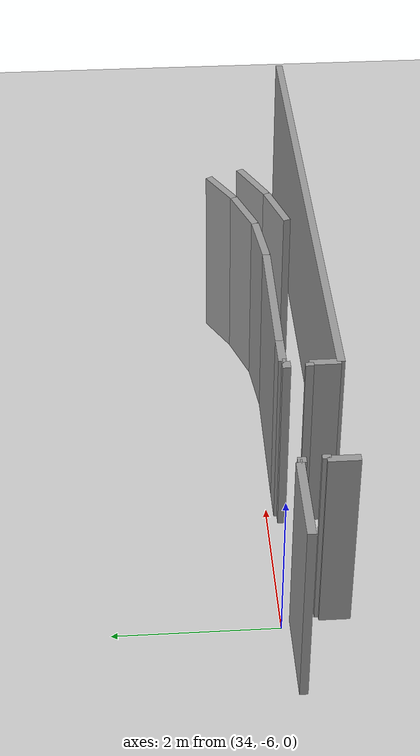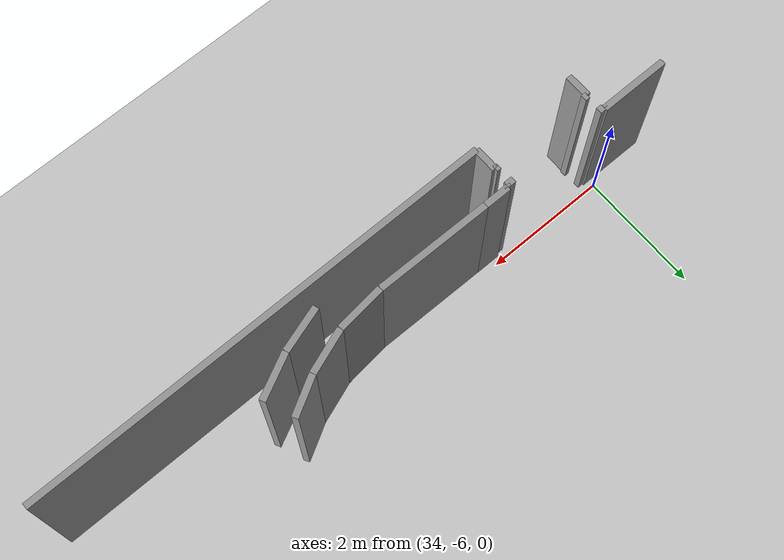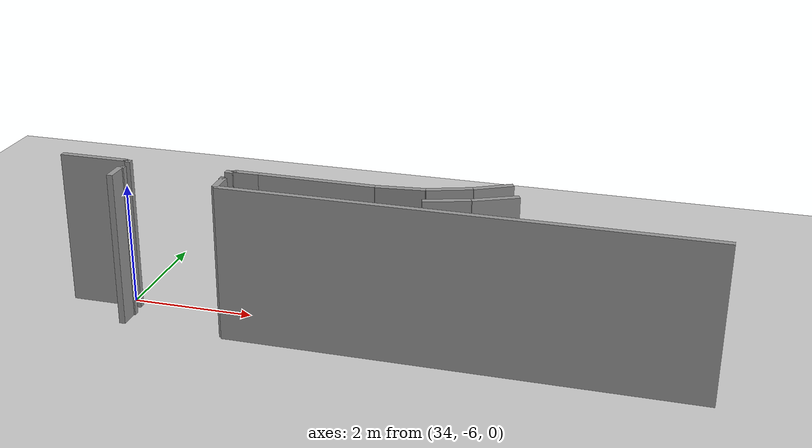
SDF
<sdf version="1.6">
 <world name="default">
  <model name="ground_plane">
   <static>1</static>
   <link name="link">
    <collision name="collision">
     <geometry><plane><normal>0 0 1</normal><size>100 100</size></plane></geometry>
     <surface><friction><ode><mu>100</mu><mu2>50</mu2></ode></friction></surface>
    </collision>
    <visual name="visual">
     <cast_shadows>0</cast_shadows>
     <geometry><plane><normal>0 0 1</normal><size>100 100</size></plane></geometry>
     <material>
      <script><uri>file://media/materials/scripts/gazebo.material</uri><name>Gazebo/Grey</name></script>
     </material>
    </visual>
   </link>
  </model>
  <model name="0510032258_A_40_1_105">
   <static>1</static>
   <link name="Wall_215">
    <collision name="Wall_215_Collision">
     <geometry><box><size>0.622096892251 0.1 2.5</size></box></geometry>
     <pose>0.311048446125 0 1.25 0 0 0</pose>
    </collision>
    <visual name="Wall_215_Visual">
     <pose>0.311048446125 0 1.25 0 0 0</pose>
     <geometry><box><size>0.622096892251 0.1 2.5</size></box></geometry>
     <material>
      <script><uri>file://media/materials/scripts/gazebo.material</uri><name>Gazebo/Grey</name></script>
      <ambient>1 1 1 1</ambient>
     </material>
    </visual>
    <pose>87.9606667344 -18.6836822848 0 0 0 -2.63262958993</pose>
   </link>
   <link name="Wall_216">
    <collision name="Wall_216_Collision">
     <geometry><box><size>0.697302840165 0.1 2.5</size></box></geometry>
     <pose>0.348651420082 0 1.25 0 0 0</pose>
    </collision>
    <visual name="Wall_216_Visual">
     <pose>0.348651420082 0 1.25 0 0 0</pose>
     <geometry><box><size>0.697302840165 0.1 2.5</size></box></geometry>
     <material>
      <script><uri>file://media/materials/scripts/gazebo.material</uri><name>Gazebo/Grey</name></script>
      <ambient>1 1 1 1</ambient>
     </material>
    </visual>
    <pose>87.4174204696 -18.9868126842 0 0 0 -2.79973301394</pose>
   </link>
   <link name="Wall_217">
    <collision name="Wall_217_Collision">
     <geometry><box><size>0.74975398253 0.1 2.5</size></box></geometry>
     <pose>0.374876991265 0 1.25 0 0 0</pose>
    </collision>
    <visual name="Wall_217_Visual">
     <pose>0.374876991265 0 1.25 0 0 0</pose>
     <geometry><box><size>0.74975398253 0.1 2.5</size></box></geometry>
     <material>
      <script><uri>file://media/materials/scripts/gazebo.material</uri><name>Gazebo/Grey</name></script>
      <ambient>1 1 1 1</ambient>
     </material>
    </visual>
    <pose>86.7604685436 -19.2205762781 0 0 0 -3.031908486</pose>
   </link>
   <link name="Wall_218">
    <collision name="Wall_218_Collision">
     <geometry><box><size>1.82555913236 0.1 2.5</size></box></geometry>
     <pose>0.912779566181 0 1.25 0 0 0</pose>
    </collision>
    <visual name="Wall_218_Visual">
     <pose>0.912779566181 0 1.25 0 0 0</pose>
     <geometry><box><size>1.82555913236 0.1 2.5</size></box></geometry>
     <material>
      <script><uri>file://media/materials/scripts/gazebo.material</uri><name>Gazebo/Grey</name></script>
      <ambient>1 1 1 1</ambient>
     </material>
    </visual>
    <pose>86.0152200427 -19.3026476268 0 0 0 3.13470293033</pose>
   </link>
   <link name="Wall_219">
    <collision name="Wall_219_Collision">
     <geometry><box><size>0.401209472507 0.1 2.5</size></box></geometry>
     <pose>0.200604736254 0 1.25 0 0 0</pose>
    </collision>
    <visual name="Wall_219_Visual">
     <pose>0.200604736254 0 1.25 0 0 0</pose>
     <geometry><box><size>0.401209472507 0.1 2.5</size></box></geometry>
     <material>
      <script><uri>file://media/materials/scripts/gazebo.material</uri><name>Gazebo/Grey</name></script>
      <ambient>1 1 1 1</ambient>
     </material>
    </visual>
    <pose>84.1897042382 -19.2900701291 0 0 0 3.14159265359</pose>
   </link>
   <link name="Wall_220">
    <collision name="Wall_220_Collision">
     <geometry><box><size>0.0382406748653 0.1 2.5</size></box></geometry>
     <pose>0.0191203374327 0 1.25 0 0 0</pose>
    </collision>
    <visual name="Wall_220_Visual">
     <pose>0.0191203374327 0 1.25 0 0 0</pose>
     <geometry><box><size>0.0382406748653 0.1 2.5</size></box></geometry>
     <material>
      <script><uri>file://media/materials/scripts/gazebo.material</uri><name>Gazebo/Grey</name></script>
      <ambient>1 1 1 1</ambient>
     </material>
    </visual>
    <pose>83.7884947657 -19.2900701291 0 0 0 -1.57079632679</pose>
   </link>
   <link name="Wall_221">
    <collision name="Wall_221_Collision">
     <geometry><box><size>0.128442931192 0.1 2.5</size></box></geometry>
     <pose>0.0642214655961 0 1.25 0 0 0</pose>
    </collision>
    <visual name="Wall_221_Visual">
     <pose>0.0642214655961 0 1.25 0 0 0</pose>
     <geometry><box><size>0.128442931192 0.1 2.5</size></box></geometry>
     <material>
      <script><uri>file://media/materials/scripts/gazebo.material</uri><name>Gazebo/Grey</name></script>
      <ambient>1 1 1 1</ambient>
     </material>
    </visual>
    <pose>83.7884947657 -19.3283108039 0 0 0 3.14159265359</pose>
   </link>
   <link name="Wall_222">
    <collision name="Wall_222_Collision">
     <geometry><box><size>0.0866449842464 0.1 2.5</size></box></geometry>
     <pose>0.0433224921232 0 1.25 0 0 0</pose>
    </collision>
    <visual name="Wall_222_Visual">
     <pose>0.0433224921232 0 1.25 0 0 0</pose>
     <geometry><box><size>0.0866449842464 0.1 2.5</size></box></geometry>
     <material>
      <script><uri>file://media/materials/scripts/gazebo.material</uri><name>Gazebo/Grey</name></script>
      <ambient>1 1 1 1</ambient>
     </material>
    </visual>
    <pose>82.0938357557 -19.3283108039 0 0 0 3.14159265359</pose>
   </link>
   <link name="Wall_223">
    <collision name="Wall_223_Collision">
     <geometry><box><size>0.0233763593861 0.1 2.5</size></box></geometry>
     <pose>0.0116881796931 0 1.25 0 0 0</pose>
    </collision>
    <visual name="Wall_223_Visual">
     <pose>0.0116881796931 0 1.25 0 0 0</pose>
     <geometry><box><size>0.0233763593861 0.1 2.5</size></box></geometry>
     <material>
      <script><uri>file://media/materials/scripts/gazebo.material</uri><name>Gazebo/Grey</name></script>
      <ambient>1 1 1 1</ambient>
     </material>
    </visual>
    <pose>82.0071907714 -19.3283108039 0 0 0 1.57079632679</pose>
   </link>
   <link name="Wall_224">
    <collision name="Wall_224_Collision">
     <geometry><box><size>1.10643866247 0.1 2.5</size></box></geometry>
     <pose>0.553219331233 0 1.25 0 0 0</pose>
    </collision>
    <visual name="Wall_224_Visual">
     <pose>0.553219331233 0 1.25 0 0 0</pose>
     <geometry><box><size>1.10643866247 0.1 2.5</size></box></geometry>
     <material>
      <script><uri>file://media/materials/scripts/gazebo.material</uri><name>Gazebo/Grey</name></script>
      <ambient>1 1 1 1</ambient>
     </material>
    </visual>
    <pose>82.0071907714 -19.3049344446 0 0 0 3.14159265359</pose>
   </link>
   <link name="Wall_246">
    <collision name="Wall_246_Collision">
     <geometry><box><size>0.376689704238 0.1 2.5</size></box></geometry>
     <pose>0.188344852119 0 1.25 0 0 0</pose>
    </collision>
    <visual name="Wall_246_Visual">
     <pose>0.188344852119 0 1.25 0 0 0</pose>
     <geometry><box><size>0.376689704238 0.1 2.5</size></box></geometry>
     <material>
      <script><uri>file://media/materials/scripts/gazebo.material</uri><name>Gazebo/Grey</name></script>
      <ambient>1 1 1 1</ambient>
     </material>
    </visual>
    <pose>82.0470830369 -19.9790375038 0 0 0 1.57079632679</pose>
   </link>
   <link name="Wall_247">
    <collision name="Wall_247_Collision">
     <geometry><box><size>0.0721618050615 0.1 2.5</size></box></geometry>
     <pose>0.0360809025307 0 1.25 0 0 0</pose>
    </collision>
    <visual name="Wall_247_Visual">
     <pose>0.0360809025307 0 1.25 0 0 0</pose>
     <geometry><box><size>0.0721618050615 0.1 2.5</size></box></geometry>
     <material>
      <script><uri>file://media/materials/scripts/gazebo.material</uri><name>Gazebo/Grey</name></script>
      <ambient>1 1 1 1</ambient>
     </material>
    </visual>
    <pose>82.0470830369 -19.6023477996 0 0 0 0.0</pose>
   </link>
   <link name="Wall_248">
    <collision name="Wall_248_Collision">
     <geometry><box><size>0.0655554426263 0.1 2.5</size></box></geometry>
     <pose>0.0327777213131 0 1.25 0 0 0</pose>
    </collision>
    <visual name="Wall_248_Visual">
     <pose>0.0327777213131 0 1.25 0 0 0</pose>
     <geometry><box><size>0.0655554426263 0.1 2.5</size></box></geometry>
     <material>
      <script><uri>file://media/materials/scripts/gazebo.material</uri><name>Gazebo/Grey</name></script>
      <ambient>1 1 1 1</ambient>
     </material>
    </visual>
    <pose>83.6798709218 -19.6023477996 0 0 0 0.0</pose>
   </link>
   <link name="Wall_249">
    <collision name="Wall_249_Collision">
     <geometry><box><size>0.375292204492 0.1 2.5</size></box></geometry>
     <pose>0.187646102246 0 1.25 0 0 0</pose>
    </collision>
    <visual name="Wall_249_Visual">
     <pose>0.187646102246 0 1.25 0 0 0</pose>
     <geometry><box><size>0.375292204492 0.1 2.5</size></box></geometry>
     <material>
      <script><uri>file://media/materials/scripts/gazebo.material</uri><name>Gazebo/Grey</name></script>
      <ambient>1 1 1 1</ambient>
     </material>
    </visual>
    <pose>83.7454263645 -19.6023477996 0 0 0 -1.57079632679</pose>
   </link>
   <link name="Wall_250">
    <collision name="Wall_250_Collision">
     <geometry><box><size>7.45578818986 0.1 2.5</size></box></geometry>
     <pose>3.72789409493 0 1.25 0 0 0</pose>
    </collision>
    <visual name="Wall_250_Visual">
     <pose>3.72789409493 0 1.25 0 0 0</pose>
     <geometry><box><size>7.45578818986 0.1 2.5</size></box></geometry>
     <material>
      <script><uri>file://media/materials/scripts/gazebo.material</uri><name>Gazebo/Grey</name></script>
      <ambient>1 1 1 1</ambient>
     </material>
    </visual>
    <pose>83.7454263645 -19.9776400041 0 0 0 0.0</pose>
   </link>
   <link name="Wall_255">
    <collision name="Wall_255_Collision">
     <geometry><box><size>0.709771364733 0.1 2.5</size></box></geometry>
     <pose>0.354885682367 0 1.25 0 0 0</pose>
    </collision>
    <visual name="Wall_255_Visual">
     <pose>0.354885682367 0 1.25 0 0 0</pose>
     <geometry><box><size>0.709771364733 0.1 2.5</size></box></geometry>
     <material>
      <script><uri>file://media/materials/scripts/gazebo.material</uri><name>Gazebo/Grey</name></script>
      <ambient>1 1 1 1</ambient>
     </material>
    </visual>
    <pose>86.8140817156 -19.652530745 0 0 0 0.303749781508</pose>
   </link>
   <link name="Wall_256">
    <collision name="Wall_256_Collision">
     <geometry><box><size>0.71776996723 0.1 2.5</size></box></geometry>
     <pose>0.358884983615 0 1.25 0 0 0</pose>
    </collision>
    <visual name="Wall_256_Visual">
     <pose>0.358884983615 0 1.25 0 0 0</pose>
     <geometry><box><size>0.71776996723 0.1 2.5</size></box></geometry>
     <material>
      <script><uri>file://media/materials/scripts/gazebo.material</uri><name>Gazebo/Grey</name></script>
      <ambient>1 1 1 1</ambient>
     </material>
    </visual>
    <pose>87.4913609107 -19.440237829 0 0 0 0.458977335033</pose>
   </link>
   <pose>-47.9 13.1512145543 0 0 0 0</pose>
  </model>
 </world>
</sdf>
